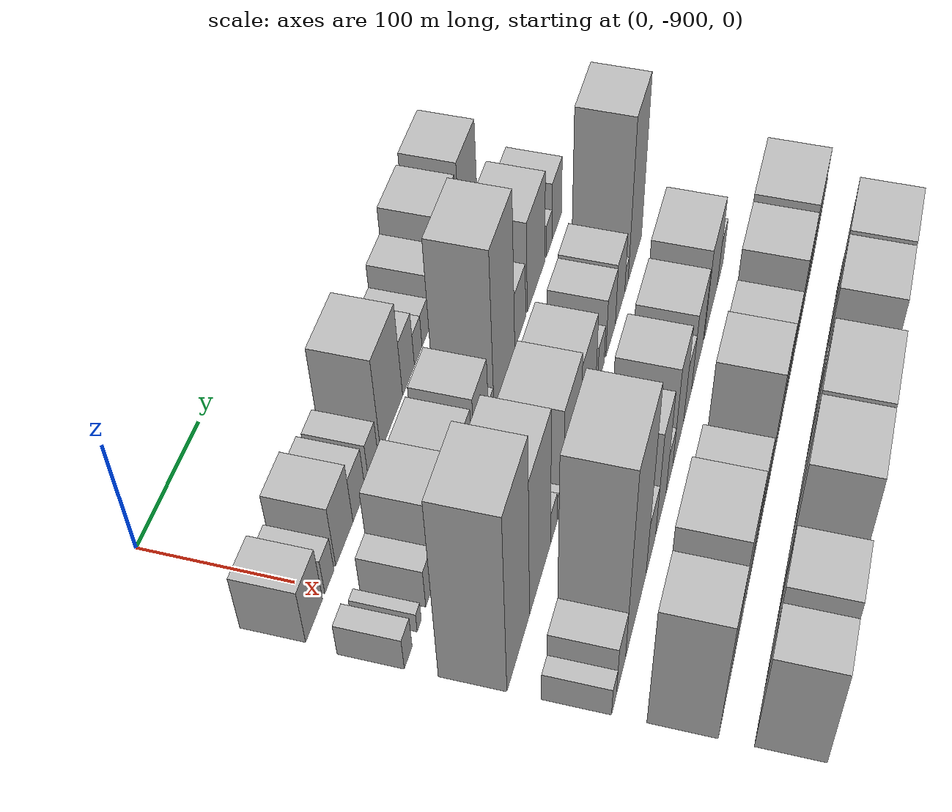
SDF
<sdf version="1.6">
 <world name="default">
  <model name="building_1">
   <static>1</static>
   <pose>100.0000 -922.0106 0 0.000000 0.000000 0.000000</pose>
   <link name="link">
    <pose>0 0 25.50 0 0 0</pose>
    <collision name="collision"><geometry><box><size>40.0000 29.9787 51.0000</size></box></geometry></collision>
    <visual name="visual">
     <cast_shadows>0</cast_shadows>
     <geometry><box><size>40.0000 29.9787 51.0000</size></box></geometry>
     <material>
      <script>
       <uri>model://HANNAS_wall/materials/scripts</uri>
       <uri>model://HANNAS_wall/materials/textures</uri>
       <name>vrc/HANNAS_wall</name>
      </script>
     </material>
    </visual>
   </link>
  </model>
  <model name="building_2">
   <static>1</static>
   <pose>100.0000 -894.5773 0 0.000000 0.000000 0.000000</pose>
   <link name="link">
    <pose>0 0 16.50 0 0 0</pose>
    <collision name="collision"><geometry><box><size>40.0000 16.8880 33.0000</size></box></geometry></collision>
    <visual name="visual">
     <cast_shadows>0</cast_shadows>
     <geometry><box><size>40.0000 16.8880 33.0000</size></box></geometry>
     <material>
      <script>
       <uri>model://HANNAS_wall/materials/scripts</uri>
       <uri>model://HANNAS_wall/materials/textures</uri>
       <name>vrc/HANNAS_wall</name>
      </script>
     </material>
    </visual>
   </link>
  </model>
  <model name="building_3">
   <static>1</static>
   <pose>100.0000 -866.7093 0 0.000000 0.000000 0.000000</pose>
   <link name="link">
    <pose>0 0 28.50 0 0 0</pose>
    <collision name="collision"><geometry><box><size>40.0000 32.8479 57.0000</size></box></geometry></collision>
    <visual name="visual">
     <cast_shadows>0</cast_shadows>
     <geometry><box><size>40.0000 32.8479 57.0000</size></box></geometry>
     <material>
      <script>
       <uri>model://HANNAS_wall/materials/scripts</uri>
       <uri>model://HANNAS_wall/materials/textures</uri>
       <name>vrc/HANNAS_wall</name>
      </script>
     </material>
    </visual>
   </link>
  </model>
  <model name="building_4">
   <static>1</static>
   <pose>100.0000 -838.2878 0 0.000000 0.000000 0.000000</pose>
   <link name="link">
    <pose>0 0 21.00 0 0 0</pose>
    <collision name="collision"><geometry><box><size>40.0000 23.9951 42.0000</size></box></geometry></collision>
    <visual name="visual">
     <cast_shadows>0</cast_shadows>
     <geometry><box><size>40.0000 23.9951 42.0000</size></box></geometry>
     <material>
      <script>
       <uri>model://HANNAS_wall/materials/scripts</uri>
       <uri>model://HANNAS_wall/materials/textures</uri>
       <name>vrc/HANNAS_wall</name>
      </script>
     </material>
    </visual>
   </link>
  </model>
  <model name="building_5">
   <static>1</static>
   <pose>100.0000 -809.5649 0 0.000000 0.000000 0.000000</pose>
   <link name="link">
    <pose>0 0 18.00 0 0 0</pose>
    <collision name="collision"><geometry><box><size>40.0000 19.4507 36.0000</size></box></geometry></collision>
    <visual name="visual">
     <cast_shadows>0</cast_shadows>
     <geometry><box><size>40.0000 19.4507 36.0000</size></box></geometry>
     <material>
      <script>
       <uri>model://HANNAS_wall/materials/scripts</uri>
       <uri>model://HANNAS_wall/materials/textures</uri>
       <name>vrc/HANNAS_wall</name>
      </script>
     </material>
    </visual>
   </link>
  </model>
  <model name="building_6">
   <static>1</static>
   <pose>100.0000 -771.3795 0 0.000000 0.000000 0.000000</pose>
   <link name="link">
    <pose>0 0 43.50 0 0 0</pose>
    <collision name="collision"><geometry><box><size>40.0000 46.9200 87.0000</size></box></geometry></collision>
    <visual name="visual">
     <cast_shadows>0</cast_shadows>
     <geometry><box><size>40.0000 46.9200 87.0000</size></box></geometry>
     <material>
      <script>
       <uri>model://HANNAS_wall/materials/scripts</uri>
       <uri>model://HANNAS_wall/materials/textures</uri>
       <name>vrc/HANNAS_wall</name>
      </script>
     </material>
    </visual>
   </link>
  </model>
  <model name="building_7">
   <static>1</static>
   <pose>100.0000 -734.8246 0 0.000000 0.000000 0.000000</pose>
   <link name="link">
    <pose>0 0 25.50 0 0 0</pose>
    <collision name="collision"><geometry><box><size>40.0000 26.1900 51.0000</size></box></geometry></collision>
    <visual name="visual">
     <cast_shadows>0</cast_shadows>
     <geometry><box><size>40.0000 26.1900 51.0000</size></box></geometry>
     <material>
      <script>
       <uri>model://HANNAS_wall/materials/scripts</uri>
       <uri>model://HANNAS_wall/materials/textures</uri>
       <name>vrc/HANNAS_wall</name>
      </script>
     </material>
    </visual>
   </link>
  </model>
  <model name="building_8">
   <static>1</static>
   <pose>100.0000 -713.0658 0 0.000000 0.000000 0.000000</pose>
   <link name="link">
    <pose>0 0 15.00 0 0 0</pose>
    <collision name="collision"><geometry><box><size>40.0000 17.3274 30.0000</size></box></geometry></collision>
    <visual name="visual">
     <cast_shadows>0</cast_shadows>
     <geometry><box><size>40.0000 17.3274 30.0000</size></box></geometry>
     <material>
      <script>
       <uri>model://HANNAS_wall/materials/scripts</uri>
       <uri>model://HANNAS_wall/materials/textures</uri>
       <name>vrc/HANNAS_wall</name>
      </script>
     </material>
    </visual>
   </link>
  </model>
  <model name="building_9">
   <static>1</static>
   <pose>100.0000 -696.1878 0 0.000000 0.000000 0.000000</pose>
   <link name="link">
    <pose>0 0 15.00 0 0 0</pose>
    <collision name="collision"><geometry><box><size>40.0000 16.4287 30.0000</size></box></geometry></collision>
    <visual name="visual">
     <cast_shadows>0</cast_shadows>
     <geometry><box><size>40.0000 16.4287 30.0000</size></box></geometry>
     <material>
      <script>
       <uri>model://HANNAS_wall/materials/scripts</uri>
       <uri>model://HANNAS_wall/materials/textures</uri>
       <name>vrc/HANNAS_wall</name>
      </script>
     </material>
    </visual>
   </link>
  </model>
  <model name="building_10">
   <static>1</static>
   <pose>100.0000 -673.2192 0 0.000000 0.000000 0.000000</pose>
   <link name="link">
    <pose>0 0 25.50 0 0 0</pose>
    <collision name="collision"><geometry><box><size>40.0000 29.5085 51.0000</size></box></geometry></collision>
    <visual name="visual">
     <cast_shadows>0</cast_shadows>
     <geometry><box><size>40.0000 29.5085 51.0000</size></box></geometry>
     <material>
      <script>
       <uri>model://HANNAS_wall/materials/scripts</uri>
       <uri>model://HANNAS_wall/materials/textures</uri>
       <name>vrc/HANNAS_wall</name>
      </script>
     </material>
    </visual>
   </link>
  </model>
  <model name="building_11">
   <static>1</static>
   <pose>100.0000 -637.4435 0 0.000000 0.000000 0.000000</pose>
   <link name="link">
    <pose>0 0 37.50 0 0 0</pose>
    <collision name="collision"><geometry><box><size>40.0000 42.0427 75.0000</size></box></geometry></collision>
    <visual name="visual">
     <cast_shadows>0</cast_shadows>
     <geometry><box><size>40.0000 42.0427 75.0000</size></box></geometry>
     <material>
      <script>
       <uri>model://HANNAS_wall/materials/scripts</uri>
       <uri>model://HANNAS_wall/materials/textures</uri>
       <name>vrc/HANNAS_wall</name>
      </script>
     </material>
    </visual>
   </link>
  </model>
  <model name="building_12">
   <static>1</static>
   <pose>100.0000 -588.8758 0 0.000000 0.000000 0.000000</pose>
   <link name="link">
    <pose>0 0 40.50 0 0 0</pose>
    <collision name="collision"><geometry><box><size>40.0000 45.0928 81.0000</size></box></geometry></collision>
    <visual name="visual">
     <cast_shadows>0</cast_shadows>
     <geometry><box><size>40.0000 45.0928 81.0000</size></box></geometry>
     <material>
      <script>
       <uri>model://HANNAS_wall/materials/scripts</uri>
       <uri>model://HANNAS_wall/materials/textures</uri>
       <name>vrc/HANNAS_wall</name>
      </script>
     </material>
    </visual>
   </link>
  </model>
  <model name="building_59">
   <static>1</static>
   <pose>160.0000 -932.4052 0 0.000000 0.000000 0.000000</pose>
   <link name="link">
    <pose>0 0 15.00 0 0 0</pose>
    <collision name="collision"><geometry><box><size>40.0000 15.1895 30.0000</size></box></geometry></collision>
    <visual name="visual">
     <cast_shadows>0</cast_shadows>
     <geometry><box><size>40.0000 15.1895 30.0000</size></box></geometry>
     <material>
      <script>
       <uri>model://HANNAS_wall/materials/scripts</uri>
       <uri>model://HANNAS_wall/materials/textures</uri>
       <name>vrc/HANNAS_wall</name>
      </script>
     </material>
    </visual>
   </link>
  </model>
  <model name="building_60">
   <static>1</static>
   <pose>160.0000 -910.6646 0 0.000000 0.000000 0.000000</pose>
   <link name="link">
    <pose>0 0 9.00 0 0 0</pose>
    <collision name="collision"><geometry><box><size>40.0000 8.2917 18.0000</size></box></geometry></collision>
    <visual name="visual">
     <cast_shadows>0</cast_shadows>
     <geometry><box><size>40.0000 8.2917 18.0000</size></box></geometry>
     <material>
      <script>
       <uri>model://HANNAS_wall/materials/scripts</uri>
       <uri>model://HANNAS_wall/materials/textures</uri>
       <name>vrc/HANNAS_wall</name>
      </script>
     </material>
    </visual>
   </link>
  </model>
  <model name="building_61">
   <static>1</static>
   <pose>160.0000 -888.4596 0 0.000000 0.000000 0.000000</pose>
   <link name="link">
    <pose>0 0 18.00 0 0 0</pose>
    <collision name="collision"><geometry><box><size>40.0000 18.1182 36.0000</size></box></geometry></collision>
    <visual name="visual">
     <cast_shadows>0</cast_shadows>
     <geometry><box><size>40.0000 18.1182 36.0000</size></box></geometry>
     <material>
      <script>
       <uri>model://HANNAS_wall/materials/scripts</uri>
       <uri>model://HANNAS_wall/materials/textures</uri>
       <name>vrc/HANNAS_wall</name>
      </script>
     </material>
    </visual>
   </link>
  </model>
  <model name="building_62">
   <static>1</static>
   <pose>160.0000 -859.8028 0 0.000000 0.000000 0.000000</pose>
   <link name="link">
    <pose>0 0 37.50 0 0 0</pose>
    <collision name="collision"><geometry><box><size>40.0000 39.1955 75.0000</size></box></geometry></collision>
    <visual name="visual">
     <cast_shadows>0</cast_shadows>
     <geometry><box><size>40.0000 39.1955 75.0000</size></box></geometry>
     <material>
      <script>
       <uri>model://HANNAS_wall/materials/scripts</uri>
       <uri>model://HANNAS_wall/materials/textures</uri>
       <name>vrc/HANNAS_wall</name>
      </script>
     </material>
    </visual>
   </link>
  </model>
  <model name="building_63">
   <static>1</static>
   <pose>160.0000 -812.5876 0 0.000000 0.000000 0.000000</pose>
   <link name="link">
    <pose>0 0 30.00 0 0 0</pose>
    <collision name="collision"><geometry><box><size>40.0000 35.2349 60.0000</size></box></geometry></collision>
    <visual name="visual">
     <cast_shadows>0</cast_shadows>
     <geometry><box><size>40.0000 35.2349 60.0000</size></box></geometry>
     <material>
      <script>
       <uri>model://HANNAS_wall/materials/scripts</uri>
       <uri>model://HANNAS_wall/materials/textures</uri>
       <name>vrc/HANNAS_wall</name>
      </script>
     </material>
    </visual>
   </link>
  </model>
  <model name="building_64">
   <static>1</static>
   <pose>160.0000 -773.4200 0 0.000000 0.000000 0.000000</pose>
   <link name="link">
    <pose>0 0 31.50 0 0 0</pose>
    <collision name="collision"><geometry><box><size>40.0000 33.1002 63.0000</size></box></geometry></collision>
    <visual name="visual">
     <cast_shadows>0</cast_shadows>
     <geometry><box><size>40.0000 33.1002 63.0000</size></box></geometry>
     <material>
      <script>
       <uri>model://HANNAS_wall/materials/scripts</uri>
       <uri>model://HANNAS_wall/materials/textures</uri>
       <name>vrc/HANNAS_wall</name>
      </script>
     </material>
    </visual>
   </link>
  </model>
  <model name="building_65">
   <static>1</static>
   <pose>160.0000 -748.5970 0 0.000000 0.000000 0.000000</pose>
   <link name="link">
    <pose>0 0 10.50 0 0 0</pose>
    <collision name="collision"><geometry><box><size>40.0000 8.5458 21.0000</size></box></geometry></collision>
    <visual name="visual">
     <cast_shadows>0</cast_shadows>
     <geometry><box><size>40.0000 8.5458 21.0000</size></box></geometry>
     <material>
      <script>
       <uri>model://HANNAS_wall/materials/scripts</uri>
       <uri>model://HANNAS_wall/materials/textures</uri>
       <name>vrc/HANNAS_wall</name>
      </script>
     </material>
    </visual>
   </link>
  </model>
  <model name="building_66">
   <static>1</static>
   <pose>160.0000 -717.8331 0 0.000000 0.000000 0.000000</pose>
   <link name="link">
    <pose>0 0 72.00 0 0 0</pose>
    <collision name="collision"><geometry><box><size>40.0000 52.9821 144.0000</size></box></geometry></collision>
    <visual name="visual">
     <cast_shadows>0</cast_shadows>
     <geometry><box><size>40.0000 52.9821 144.0000</size></box></geometry>
     <material>
      <script>
       <uri>model://HANNAS_wall/materials/scripts</uri>
       <uri>model://HANNAS_wall/materials/textures</uri>
       <name>vrc/HANNAS_wall</name>
      </script>
     </material>
    </visual>
   </link>
  </model>
  <model name="building_67">
   <static>1</static>
   <pose>160.0000 -676.6787 0 0.000000 0.000000 0.000000</pose>
   <link name="link">
    <pose>0 0 25.50 0 0 0</pose>
    <collision name="collision"><geometry><box><size>40.0000 29.3267 51.0000</size></box></geometry></collision>
    <visual name="visual">
     <cast_shadows>0</cast_shadows>
     <geometry><box><size>40.0000 29.3267 51.0000</size></box></geometry>
     <material>
      <script>
       <uri>model://HANNAS_wall/materials/scripts</uri>
       <uri>model://HANNAS_wall/materials/textures</uri>
       <name>vrc/HANNAS_wall</name>
      </script>
     </material>
    </visual>
   </link>
  </model>
  <model name="building_68">
   <static>1</static>
   <pose>160.0000 -632.9793 0 0.000000 0.000000 0.000000</pose>
   <link name="link">
    <pose>0 0 42.00 0 0 0</pose>
    <collision name="collision"><geometry><box><size>40.0000 50.0722 84.0000</size></box></geometry></collision>
    <visual name="visual">
     <cast_shadows>0</cast_shadows>
     <geometry><box><size>40.0000 50.0722 84.0000</size></box></geometry>
     <material>
      <script>
       <uri>model://HANNAS_wall/materials/scripts</uri>
       <uri>model://HANNAS_wall/materials/textures</uri>
       <name>vrc/HANNAS_wall</name>
      </script>
     </material>
    </visual>
   </link>
  </model>
  <model name="building_69">
   <static>1</static>
   <pose>160.0000 -595.7479 0 0.000000 0.000000 0.000000</pose>
   <link name="link">
    <pose>0 0 15.00 0 0 0</pose>
    <collision name="collision"><geometry><box><size>40.0000 16.3907 30.0000</size></box></geometry></collision>
    <visual name="visual">
     <cast_shadows>0</cast_shadows>
     <geometry><box><size>40.0000 16.3907 30.0000</size></box></geometry>
     <material>
      <script>
       <uri>model://HANNAS_wall/materials/scripts</uri>
       <uri>model://HANNAS_wall/materials/textures</uri>
       <name>vrc/HANNAS_wall</name>
      </script>
     </material>
    </visual>
   </link>
  </model>
  <model name="building_70">
   <static>1</static>
   <pose>160.0000 -573.2545 0 0.000000 0.000000 0.000000</pose>
   <link name="link">
    <pose>0 0 27.00 0 0 0</pose>
    <collision name="collision"><geometry><box><size>40.0000 28.5960 54.0000</size></box></geometry></collision>
    <visual name="visual">
     <cast_shadows>0</cast_shadows>
     <geometry><box><size>40.0000 28.5960 54.0000</size></box></geometry>
     <material>
      <script>
       <uri>model://HANNAS_wall/materials/scripts</uri>
       <uri>model://HANNAS_wall/materials/textures</uri>
       <name>vrc/HANNAS_wall</name>
      </script>
     </material>
    </visual>
   </link>
  </model>
  <model name="building_117">
   <static>1</static>
   <pose>220.0000 -914.1873 0 0.000000 0.000000 0.000000</pose>
   <link name="link">
    <pose>0 0 84.00 0 0 0</pose>
    <collision name="collision"><geometry><box><size>40.0000 51.6253 168.0000</size></box></geometry></collision>
    <visual name="visual">
     <cast_shadows>0</cast_shadows>
     <geometry><box><size>40.0000 51.6253 168.0000</size></box></geometry>
     <material>
      <script>
       <uri>model://HANNAS_wall/materials/scripts</uri>
       <uri>model://HANNAS_wall/materials/textures</uri>
       <name>vrc/HANNAS_wall</name>
      </script>
     </material>
    </visual>
   </link>
  </model>
  <model name="building_118">
   <static>1</static>
   <pose>220.0000 -862.8653 0 0.000000 0.000000 0.000000</pose>
   <link name="link">
    <pose>0 0 64.50 0 0 0</pose>
    <collision name="collision"><geometry><box><size>40.0000 51.0187 129.0000</size></box></geometry></collision>
    <visual name="visual">
     <cast_shadows>0</cast_shadows>
     <geometry><box><size>40.0000 51.0187 129.0000</size></box></geometry>
     <material>
      <script>
       <uri>model://HANNAS_wall/materials/scripts</uri>
       <uri>model://HANNAS_wall/materials/textures</uri>
       <name>vrc/HANNAS_wall</name>
      </script>
     </material>
    </visual>
   </link>
  </model>
  <model name="building_119">
   <static>1</static>
   <pose>220.0000 -828.9897 0 0.000000 0.000000 0.000000</pose>
   <link name="link">
    <pose>0 0 15.00 0 0 0</pose>
    <collision name="collision"><geometry><box><size>40.0000 16.7325 30.0000</size></box></geometry></collision>
    <visual name="visual">
     <cast_shadows>0</cast_shadows>
     <geometry><box><size>40.0000 16.7325 30.0000</size></box></geometry>
     <material>
      <script>
       <uri>model://HANNAS_wall/materials/scripts</uri>
       <uri>model://HANNAS_wall/materials/textures</uri>
       <name>vrc/HANNAS_wall</name>
      </script>
     </material>
    </visual>
   </link>
  </model>
  <model name="building_120">
   <static>1</static>
   <pose>220.0000 -815.4425 0 0.000000 0.000000 0.000000</pose>
   <link name="link">
    <pose>0 0 12.00 0 0 0</pose>
    <collision name="collision"><geometry><box><size>40.0000 10.3620 24.0000</size></box></geometry></collision>
    <visual name="visual">
     <cast_shadows>0</cast_shadows>
     <geometry><box><size>40.0000 10.3620 24.0000</size></box></geometry>
     <material>
      <script>
       <uri>model://HANNAS_wall/materials/scripts</uri>
       <uri>model://HANNAS_wall/materials/textures</uri>
       <name>vrc/HANNAS_wall</name>
      </script>
     </material>
    </visual>
   </link>
  </model>
  <model name="building_121">
   <static>1</static>
   <pose>220.0000 -781.3089 0 0.000000 0.000000 0.000000</pose>
   <link name="link">
    <pose>0 0 43.50 0 0 0</pose>
    <collision name="collision"><geometry><box><size>40.0000 45.9051 87.0000</size></box></geometry></collision>
    <visual name="visual">
     <cast_shadows>0</cast_shadows>
     <geometry><box><size>40.0000 45.9051 87.0000</size></box></geometry>
     <material>
      <script>
       <uri>model://HANNAS_wall/materials/scripts</uri>
       <uri>model://HANNAS_wall/materials/textures</uri>
       <name>vrc/HANNAS_wall</name>
      </script>
     </material>
    </visual>
   </link>
  </model>
  <model name="building_122">
   <static>1</static>
   <pose>220.0000 -736.4931 0 0.000000 0.000000 0.000000</pose>
   <link name="link">
    <pose>0 0 37.50 0 0 0</pose>
    <collision name="collision"><geometry><box><size>40.0000 43.7265 75.0000</size></box></geometry></collision>
    <visual name="visual">
     <cast_shadows>0</cast_shadows>
     <geometry><box><size>40.0000 43.7265 75.0000</size></box></geometry>
     <material>
      <script>
       <uri>model://HANNAS_wall/materials/scripts</uri>
       <uri>model://HANNAS_wall/materials/textures</uri>
       <name>vrc/HANNAS_wall</name>
      </script>
     </material>
    </visual>
   </link>
  </model>
  <model name="building_123">
   <static>1</static>
   <pose>220.0000 -698.7653 0 0.000000 0.000000 0.000000</pose>
   <link name="link">
    <pose>0 0 18.00 0 0 0</pose>
    <collision name="collision"><geometry><box><size>40.0000 19.7292 36.0000</size></box></geometry></collision>
    <visual name="visual">
     <cast_shadows>0</cast_shadows>
     <geometry><box><size>40.0000 19.7292 36.0000</size></box></geometry>
     <material>
      <script>
       <uri>model://HANNAS_wall/materials/scripts</uri>
       <uri>model://HANNAS_wall/materials/textures</uri>
       <name>vrc/HANNAS_wall</name>
      </script>
     </material>
    </visual>
   </link>
  </model>
  <model name="building_124">
   <static>1</static>
   <pose>220.0000 -669.1818 0 0.000000 0.000000 0.000000</pose>
   <link name="link">
    <pose>0 0 27.00 0 0 0</pose>
    <collision name="collision"><geometry><box><size>40.0000 29.4377 54.0000</size></box></geometry></collision>
    <visual name="visual">
     <cast_shadows>0</cast_shadows>
     <geometry><box><size>40.0000 29.4377 54.0000</size></box></geometry>
     <material>
      <script>
       <uri>model://HANNAS_wall/materials/scripts</uri>
       <uri>model://HANNAS_wall/materials/textures</uri>
       <name>vrc/HANNAS_wall</name>
      </script>
     </material>
    </visual>
   </link>
  </model>
  <model name="building_125">
   <static>1</static>
   <pose>220.0000 -639.5511 0 0.000000 0.000000 0.000000</pose>
   <link name="link">
    <pose>0 0 28.50 0 0 0</pose>
    <collision name="collision"><geometry><box><size>40.0000 29.8237 57.0000</size></box></geometry></collision>
    <visual name="visual">
     <cast_shadows>0</cast_shadows>
     <geometry><box><size>40.0000 29.8237 57.0000</size></box></geometry>
     <material>
      <script>
       <uri>model://HANNAS_wall/materials/scripts</uri>
       <uri>model://HANNAS_wall/materials/textures</uri>
       <name>vrc/HANNAS_wall</name>
      </script>
     </material>
    </visual>
   </link>
  </model>
  <model name="building_126">
   <static>1</static>
   <pose>220.0000 -619.0570 0 0.000000 0.000000 0.000000</pose>
   <link name="link">
    <pose>0 0 12.00 0 0 0</pose>
    <collision name="collision"><geometry><box><size>40.0000 11.1645 24.0000</size></box></geometry></collision>
    <visual name="visual">
     <cast_shadows>0</cast_shadows>
     <geometry><box><size>40.0000 11.1645 24.0000</size></box></geometry>
     <material>
      <script>
       <uri>model://HANNAS_wall/materials/scripts</uri>
       <uri>model://HANNAS_wall/materials/textures</uri>
       <name>vrc/HANNAS_wall</name>
      </script>
     </material>
    </visual>
   </link>
  </model>
  <model name="building_127">
   <static>1</static>
   <pose>220.0000 -590.9575 0 0.000000 0.000000 0.000000</pose>
   <link name="link">
    <pose>0 0 73.50 0 0 0</pose>
    <collision name="collision"><geometry><box><size>40.0000 45.0345 147.0000</size></box></geometry></collision>
    <visual name="visual">
     <cast_shadows>0</cast_shadows>
     <geometry><box><size>40.0000 45.0345 147.0000</size></box></geometry>
     <material>
      <script>
       <uri>model://HANNAS_wall/materials/scripts</uri>
       <uri>model://HANNAS_wall/materials/textures</uri>
       <name>vrc/HANNAS_wall</name>
      </script>
     </material>
    </visual>
   </link>
  </model>
  <model name="building_169">
   <static>1</static>
   <pose>280.0000 -933.6014 0 0.000000 0.000000 0.000000</pose>
   <link name="link">
    <pose>0 0 13.50 0 0 0</pose>
    <collision name="collision"><geometry><box><size>40.0000 12.7972 27.0000</size></box></geometry></collision>
    <visual name="visual">
     <cast_shadows>0</cast_shadows>
     <geometry><box><size>40.0000 12.7972 27.0000</size></box></geometry>
     <material>
      <script>
       <uri>model://HANNAS_wall/materials/scripts</uri>
       <uri>model://HANNAS_wall/materials/textures</uri>
       <name>vrc/HANNAS_wall</name>
      </script>
     </material>
    </visual>
   </link>
  </model>
  <model name="building_170">
   <static>1</static>
   <pose>280.0000 -915.1027 0 0.000000 0.000000 0.000000</pose>
   <link name="link">
    <pose>0 0 24.00 0 0 0</pose>
    <collision name="collision"><geometry><box><size>40.0000 24.2002 48.0000</size></box></geometry></collision>
    <visual name="visual">
     <cast_shadows>0</cast_shadows>
     <geometry><box><size>40.0000 24.2002 48.0000</size></box></geometry>
     <material>
      <script>
       <uri>model://HANNAS_wall/materials/scripts</uri>
       <uri>model://HANNAS_wall/materials/textures</uri>
       <name>vrc/HANNAS_wall</name>
      </script>
     </material>
    </visual>
   </link>
  </model>
  <model name="building_171">
   <static>1</static>
   <pose>280.0000 -874.0741 0 0.000000 0.000000 0.000000</pose>
   <link name="link">
    <pose>0 0 88.50 0 0 0</pose>
    <collision name="collision"><geometry><box><size>40.0000 57.8569 177.0000</size></box></geometry></collision>
    <visual name="visual">
     <cast_shadows>0</cast_shadows>
     <geometry><box><size>40.0000 57.8569 177.0000</size></box></geometry>
     <material>
      <script>
       <uri>model://HANNAS_wall/materials/scripts</uri>
       <uri>model://HANNAS_wall/materials/textures</uri>
       <name>vrc/HANNAS_wall</name>
      </script>
     </material>
    </visual>
   </link>
  </model>
  <model name="building_172">
   <static>1</static>
   <pose>280.0000 -830.8877 0 0.000000 0.000000 0.000000</pose>
   <link name="link">
    <pose>0 0 25.50 0 0 0</pose>
    <collision name="collision"><geometry><box><size>40.0000 28.5160 51.0000</size></box></geometry></collision>
    <visual name="visual">
     <cast_shadows>0</cast_shadows>
     <geometry><box><size>40.0000 28.5160 51.0000</size></box></geometry>
     <material>
      <script>
       <uri>model://HANNAS_wall/materials/scripts</uri>
       <uri>model://HANNAS_wall/materials/textures</uri>
       <name>vrc/HANNAS_wall</name>
      </script>
     </material>
    </visual>
   </link>
  </model>
  <model name="building_173">
   <static>1</static>
   <pose>280.0000 -800.4242 0 0.000000 0.000000 0.000000</pose>
   <link name="link">
    <pose>0 0 49.50 0 0 0</pose>
    <collision name="collision"><geometry><box><size>40.0000 32.4110 99.0000</size></box></geometry></collision>
    <visual name="visual">
     <cast_shadows>0</cast_shadows>
     <geometry><box><size>40.0000 32.4110 99.0000</size></box></geometry>
     <material>
      <script>
       <uri>model://HANNAS_wall/materials/scripts</uri>
       <uri>model://HANNAS_wall/materials/textures</uri>
       <name>vrc/HANNAS_wall</name>
      </script>
     </material>
    </visual>
   </link>
  </model>
  <model name="building_174">
   <static>1</static>
   <pose>280.0000 -773.3266 0 0.000000 0.000000 0.000000</pose>
   <link name="link">
    <pose>0 0 19.50 0 0 0</pose>
    <collision name="collision"><geometry><box><size>40.0000 21.7841 39.0000</size></box></geometry></collision>
    <visual name="visual">
     <cast_shadows>0</cast_shadows>
     <geometry><box><size>40.0000 21.7841 39.0000</size></box></geometry>
     <material>
      <script>
       <uri>model://HANNAS_wall/materials/scripts</uri>
       <uri>model://HANNAS_wall/materials/textures</uri>
       <name>vrc/HANNAS_wall</name>
      </script>
     </material>
    </visual>
   </link>
  </model>
  <model name="building_175">
   <static>1</static>
   <pose>280.0000 -744.6228 0 0.000000 0.000000 0.000000</pose>
   <link name="link">
    <pose>0 0 46.50 0 0 0</pose>
    <collision name="collision"><geometry><box><size>40.0000 35.6234 93.0000</size></box></geometry></collision>
    <visual name="visual">
     <cast_shadows>0</cast_shadows>
     <geometry><box><size>40.0000 35.6234 93.0000</size></box></geometry>
     <material>
      <script>
       <uri>model://HANNAS_wall/materials/scripts</uri>
       <uri>model://HANNAS_wall/materials/textures</uri>
       <name>vrc/HANNAS_wall</name>
      </script>
     </material>
    </visual>
   </link>
  </model>
  <model name="building_176">
   <static>1</static>
   <pose>280.0000 -712.9865 0 0.000000 0.000000 0.000000</pose>
   <link name="link">
    <pose>0 0 27.00 0 0 0</pose>
    <collision name="collision"><geometry><box><size>40.0000 27.6493 54.0000</size></box></geometry></collision>
    <visual name="visual">
     <cast_shadows>0</cast_shadows>
     <geometry><box><size>40.0000 27.6493 54.0000</size></box></geometry>
     <material>
      <script>
       <uri>model://HANNAS_wall/materials/scripts</uri>
       <uri>model://HANNAS_wall/materials/textures</uri>
       <name>vrc/HANNAS_wall</name>
      </script>
     </material>
    </visual>
   </link>
  </model>
  <model name="building_177">
   <static>1</static>
   <pose>280.0000 -678.4718 0 0.000000 0.000000 0.000000</pose>
   <link name="link">
    <pose>0 0 36.00 0 0 0</pose>
    <collision name="collision"><geometry><box><size>40.0000 41.3801 72.0000</size></box></geometry></collision>
    <visual name="visual">
     <cast_shadows>0</cast_shadows>
     <geometry><box><size>40.0000 41.3801 72.0000</size></box></geometry>
     <material>
      <script>
       <uri>model://HANNAS_wall/materials/scripts</uri>
       <uri>model://HANNAS_wall/materials/textures</uri>
       <name>vrc/HANNAS_wall</name>
      </script>
     </material>
    </visual>
   </link>
  </model>
  <model name="building_178">
   <static>1</static>
   <pose>280.0000 -628.5892 0 0.000000 0.000000 0.000000</pose>
   <link name="link">
    <pose>0 0 42.00 0 0 0</pose>
    <collision name="collision"><geometry><box><size>40.0000 50.3851 84.0000</size></box></geometry></collision>
    <visual name="visual">
     <cast_shadows>0</cast_shadows>
     <geometry><box><size>40.0000 50.3851 84.0000</size></box></geometry>
     <material>
      <script>
       <uri>model://HANNAS_wall/materials/scripts</uri>
       <uri>model://HANNAS_wall/materials/textures</uri>
       <name>vrc/HANNAS_wall</name>
      </script>
     </material>
    </visual>
   </link>
  </model>
  <model name="building_179">
   <static>1</static>
   <pose>280.0000 -591.5331 0 0.000000 0.000000 0.000000</pose>
   <link name="link">
    <pose>0 0 21.00 0 0 0</pose>
    <collision name="collision"><geometry><box><size>40.0000 23.7270 42.0000</size></box></geometry></collision>
    <visual name="visual">
     <cast_shadows>0</cast_shadows>
     <geometry><box><size>40.0000 23.7270 42.0000</size></box></geometry>
     <material>
      <script>
       <uri>model://HANNAS_wall/materials/scripts</uri>
       <uri>model://HANNAS_wall/materials/textures</uri>
       <name>vrc/HANNAS_wall</name>
      </script>
     </material>
    </visual>
   </link>
  </model>
  <model name="building_221">
   <static>1</static>
   <pose>340.0000 -920.9329 0 0.000000 0.000000 0.000000</pose>
   <link name="link">
    <pose>0 0 57.00 0 0 0</pose>
    <collision name="collision"><geometry><box><size>40.0000 38.1341 114.0000</size></box></geometry></collision>
    <visual name="visual">
     <cast_shadows>0</cast_shadows>
     <geometry><box><size>40.0000 38.1341 114.0000</size></box></geometry>
     <material>
      <script>
       <uri>model://HANNAS_wall/materials/scripts</uri>
       <uri>model://HANNAS_wall/materials/textures</uri>
       <name>vrc/HANNAS_wall</name>
      </script>
     </material>
    </visual>
   </link>
  </model>
  <model name="building_222">
   <static>1</static>
   <pose>340.0000 -878.8045 0 0.000000 0.000000 0.000000</pose>
   <link name="link">
    <pose>0 0 67.50 0 0 0</pose>
    <collision name="collision"><geometry><box><size>40.0000 46.1228 135.0000</size></box></geometry></collision>
    <visual name="visual">
     <cast_shadows>0</cast_shadows>
     <geometry><box><size>40.0000 46.1228 135.0000</size></box></geometry>
     <material>
      <script>
       <uri>model://HANNAS_wall/materials/scripts</uri>
       <uri>model://HANNAS_wall/materials/textures</uri>
       <name>vrc/HANNAS_wall</name>
      </script>
     </material>
    </visual>
   </link>
  </model>
  <model name="building_223">
   <static>1</static>
   <pose>340.0000 -831.2304 0 0.000000 0.000000 0.000000</pose>
   <link name="link">
    <pose>0 0 55.50 0 0 0</pose>
    <collision name="collision"><geometry><box><size>40.0000 35.0254 111.0000</size></box></geometry></collision>
    <visual name="visual">
     <cast_shadows>0</cast_shadows>
     <geometry><box><size>40.0000 35.0254 111.0000</size></box></geometry>
     <material>
      <script>
       <uri>model://HANNAS_wall/materials/scripts</uri>
       <uri>model://HANNAS_wall/materials/textures</uri>
       <name>vrc/HANNAS_wall</name>
      </script>
     </material>
    </visual>
   </link>
  </model>
  <model name="building_224">
   <static>1</static>
   <pose>340.0000 -798.8366 0 0.000000 0.000000 0.000000</pose>
   <link name="link">
    <pose>0 0 27.00 0 0 0</pose>
    <collision name="collision"><geometry><box><size>40.0000 29.7622 54.0000</size></box></geometry></collision>
    <visual name="visual">
     <cast_shadows>0</cast_shadows>
     <geometry><box><size>40.0000 29.7622 54.0000</size></box></geometry>
     <material>
      <script>
       <uri>model://HANNAS_wall/materials/scripts</uri>
       <uri>model://HANNAS_wall/materials/textures</uri>
       <name>vrc/HANNAS_wall</name>
      </script>
     </material>
    </visual>
   </link>
  </model>
  <model name="building_225">
   <static>1</static>
   <pose>340.0000 -758.0986 0 0.000000 0.000000 0.000000</pose>
   <link name="link">
    <pose>0 0 61.50 0 0 0</pose>
    <collision name="collision"><geometry><box><size>40.0000 39.7137 123.0000</size></box></geometry></collision>
    <visual name="visual">
     <cast_shadows>0</cast_shadows>
     <geometry><box><size>40.0000 39.7137 123.0000</size></box></geometry>
     <material>
      <script>
       <uri>model://HANNAS_wall/materials/scripts</uri>
       <uri>model://HANNAS_wall/materials/textures</uri>
       <name>vrc/HANNAS_wall</name>
      </script>
     </material>
    </visual>
   </link>
  </model>
  <model name="building_226">
   <static>1</static>
   <pose>340.0000 -718.1166 0 0.000000 0.000000 0.000000</pose>
   <link name="link">
    <pose>0 0 54.00 0 0 0</pose>
    <collision name="collision"><geometry><box><size>40.0000 40.2503 108.0000</size></box></geometry></collision>
    <visual name="visual">
     <cast_shadows>0</cast_shadows>
     <geometry><box><size>40.0000 40.2503 108.0000</size></box></geometry>
     <material>
      <script>
       <uri>model://HANNAS_wall/materials/scripts</uri>
       <uri>model://HANNAS_wall/materials/textures</uri>
       <name>vrc/HANNAS_wall</name>
      </script>
     </material>
    </visual>
   </link>
  </model>
  <model name="building_227">
   <static>1</static>
   <pose>340.0000 -672.1691 0 0.000000 0.000000 0.000000</pose>
   <link name="link">
    <pose>0 0 64.50 0 0 0</pose>
    <collision name="collision"><geometry><box><size>40.0000 41.6448 129.0000</size></box></geometry></collision>
    <visual name="visual">
     <cast_shadows>0</cast_shadows>
     <geometry><box><size>40.0000 41.6448 129.0000</size></box></geometry>
     <material>
      <script>
       <uri>model://HANNAS_wall/materials/scripts</uri>
       <uri>model://HANNAS_wall/materials/textures</uri>
       <name>vrc/HANNAS_wall</name>
      </script>
     </material>
    </visual>
   </link>
  </model>
  <model name="building_228">
   <static>1</static>
   <pose>340.0000 -625.0194 0 0.000000 0.000000 0.000000</pose>
   <link name="link">
    <pose>0 0 67.50 0 0 0</pose>
    <collision name="collision"><geometry><box><size>40.0000 52.6547 135.0000</size></box></geometry></collision>
    <visual name="visual">
     <cast_shadows>0</cast_shadows>
     <geometry><box><size>40.0000 52.6547 135.0000</size></box></geometry>
     <material>
      <script>
       <uri>model://HANNAS_wall/materials/scripts</uri>
       <uri>model://HANNAS_wall/materials/textures</uri>
       <name>vrc/HANNAS_wall</name>
      </script>
     </material>
    </visual>
   </link>
  </model>
  <model name="building_229">
   <static>1</static>
   <pose>340.0000 -577.4168 0 0.000000 0.000000 0.000000</pose>
   <link name="link">
    <pose>0 0 36.00 0 0 0</pose>
    <collision name="collision"><geometry><box><size>40.0000 42.5505 72.0000</size></box></geometry></collision>
    <visual name="visual">
     <cast_shadows>0</cast_shadows>
     <geometry><box><size>40.0000 42.5505 72.0000</size></box></geometry>
     <material>
      <script>
       <uri>model://HANNAS_wall/materials/scripts</uri>
       <uri>model://HANNAS_wall/materials/textures</uri>
       <name>vrc/HANNAS_wall</name>
      </script>
     </material>
    </visual>
   </link>
  </model>
  <model name="building_272">
   <static>1</static>
   <pose>400.0000 -922.8086 0 0.000000 0.000000 0.000000</pose>
   <link name="link">
    <pose>0 0 46.50 0 0 0</pose>
    <collision name="collision"><geometry><box><size>40.0000 34.3828 93.0000</size></box></geometry></collision>
    <visual name="visual">
     <cast_shadows>0</cast_shadows>
     <geometry><box><size>40.0000 34.3828 93.0000</size></box></geometry>
     <material>
      <script>
       <uri>model://HANNAS_wall/materials/scripts</uri>
       <uri>model://HANNAS_wall/materials/textures</uri>
       <name>vrc/HANNAS_wall</name>
      </script>
     </material>
    </visual>
   </link>
  </model>
  <model name="building_273">
   <static>1</static>
   <pose>400.0000 -885.9509 0 0.000000 0.000000 0.000000</pose>
   <link name="link">
    <pose>0 0 54.00 0 0 0</pose>
    <collision name="collision"><geometry><box><size>40.0000 39.3325 108.0000</size></box></geometry></collision>
    <visual name="visual">
     <cast_shadows>0</cast_shadows>
     <geometry><box><size>40.0000 39.3325 108.0000</size></box></geometry>
     <material>
      <script>
       <uri>model://HANNAS_wall/materials/scripts</uri>
       <uri>model://HANNAS_wall/materials/textures</uri>
       <name>vrc/HANNAS_wall</name>
      </script>
     </material>
    </visual>
   </link>
  </model>
  <model name="building_274">
   <static>1</static>
   <pose>400.0000 -857.2999 0 0.000000 0.000000 0.000000</pose>
   <link name="link">
    <pose>0 0 16.50 0 0 0</pose>
    <collision name="collision"><geometry><box><size>40.0000 17.9696 33.0000</size></box></geometry></collision>
    <visual name="visual">
     <cast_shadows>0</cast_shadows>
     <geometry><box><size>40.0000 17.9696 33.0000</size></box></geometry>
     <material>
      <script>
       <uri>model://HANNAS_wall/materials/scripts</uri>
       <uri>model://HANNAS_wall/materials/textures</uri>
       <name>vrc/HANNAS_wall</name>
      </script>
     </material>
    </visual>
   </link>
  </model>
  <model name="building_275">
   <static>1</static>
   <pose>400.0000 -823.9137 0 0.000000 0.000000 0.000000</pose>
   <link name="link">
    <pose>0 0 69.00 0 0 0</pose>
    <collision name="collision"><geometry><box><size>40.0000 48.8029 138.0000</size></box></geometry></collision>
    <visual name="visual">
     <cast_shadows>0</cast_shadows>
     <geometry><box><size>40.0000 48.8029 138.0000</size></box></geometry>
     <material>
      <script>
       <uri>model://HANNAS_wall/materials/scripts</uri>
       <uri>model://HANNAS_wall/materials/textures</uri>
       <name>vrc/HANNAS_wall</name>
      </script>
     </material>
    </visual>
   </link>
  </model>
  <model name="building_276">
   <static>1</static>
   <pose>400.0000 -772.5262 0 0.000000 0.000000 0.000000</pose>
   <link name="link">
    <pose>0 0 70.50 0 0 0</pose>
    <collision name="collision"><geometry><box><size>40.0000 53.9720 141.0000</size></box></geometry></collision>
    <visual name="visual">
     <cast_shadows>0</cast_shadows>
     <geometry><box><size>40.0000 53.9720 141.0000</size></box></geometry>
     <material>
      <script>
       <uri>model://HANNAS_wall/materials/scripts</uri>
       <uri>model://HANNAS_wall/materials/textures</uri>
       <name>vrc/HANNAS_wall</name>
      </script>
     </material>
    </visual>
   </link>
  </model>
  <model name="building_277">
   <static>1</static>
   <pose>400.0000 -721.9607 0 0.000000 0.000000 0.000000</pose>
   <link name="link">
    <pose>0 0 34.50 0 0 0</pose>
    <collision name="collision"><geometry><box><size>40.0000 41.1591 69.0000</size></box></geometry></collision>
    <visual name="visual">
     <cast_shadows>0</cast_shadows>
     <geometry><box><size>40.0000 41.1591 69.0000</size></box></geometry>
     <material>
      <script>
       <uri>model://HANNAS_wall/materials/scripts</uri>
       <uri>model://HANNAS_wall/materials/textures</uri>
       <name>vrc/HANNAS_wall</name>
      </script>
     </material>
    </visual>
   </link>
  </model>
  <model name="building_278">
   <static>1</static>
   <pose>400.0000 -678.5164 0 0.000000 0.000000 0.000000</pose>
   <link name="link">
    <pose>0 0 60.00 0 0 0</pose>
    <collision name="collision"><geometry><box><size>40.0000 45.7294 120.0000</size></box></geometry></collision>
    <visual name="visual">
     <cast_shadows>0</cast_shadows>
     <geometry><box><size>40.0000 45.7294 120.0000</size></box></geometry>
     <material>
      <script>
       <uri>model://HANNAS_wall/materials/scripts</uri>
       <uri>model://HANNAS_wall/materials/textures</uri>
       <name>vrc/HANNAS_wall</name>
      </script>
     </material>
    </visual>
   </link>
  </model>
  <model name="building_279">
   <static>1</static>
   <pose>400.0000 -631.6013 0 0.000000 0.000000 0.000000</pose>
   <link name="link">
    <pose>0 0 61.50 0 0 0</pose>
    <collision name="collision"><geometry><box><size>40.0000 48.1009 123.0000</size></box></geometry></collision>
    <visual name="visual">
     <cast_shadows>0</cast_shadows>
     <geometry><box><size>40.0000 48.1009 123.0000</size></box></geometry>
     <material>
      <script>
       <uri>model://HANNAS_wall/materials/scripts</uri>
       <uri>model://HANNAS_wall/materials/textures</uri>
       <name>vrc/HANNAS_wall</name>
      </script>
     </material>
    </visual>
   </link>
  </model>
  <model name="building_280">
   <static>1</static>
   <pose>400.0000 -594.8963 0 0.000000 0.000000 0.000000</pose>
   <link name="link">
    <pose>0 0 15.00 0 0 0</pose>
    <collision name="collision"><geometry><box><size>40.0000 17.3092 30.0000</size></box></geometry></collision>
    <visual name="visual">
     <cast_shadows>0</cast_shadows>
     <geometry><box><size>40.0000 17.3092 30.0000</size></box></geometry>
     <material>
      <script>
       <uri>model://HANNAS_wall/materials/scripts</uri>
       <uri>model://HANNAS_wall/materials/textures</uri>
       <name>vrc/HANNAS_wall</name>
      </script>
     </material>
    </visual>
   </link>
  </model>
 </world>
</sdf>
